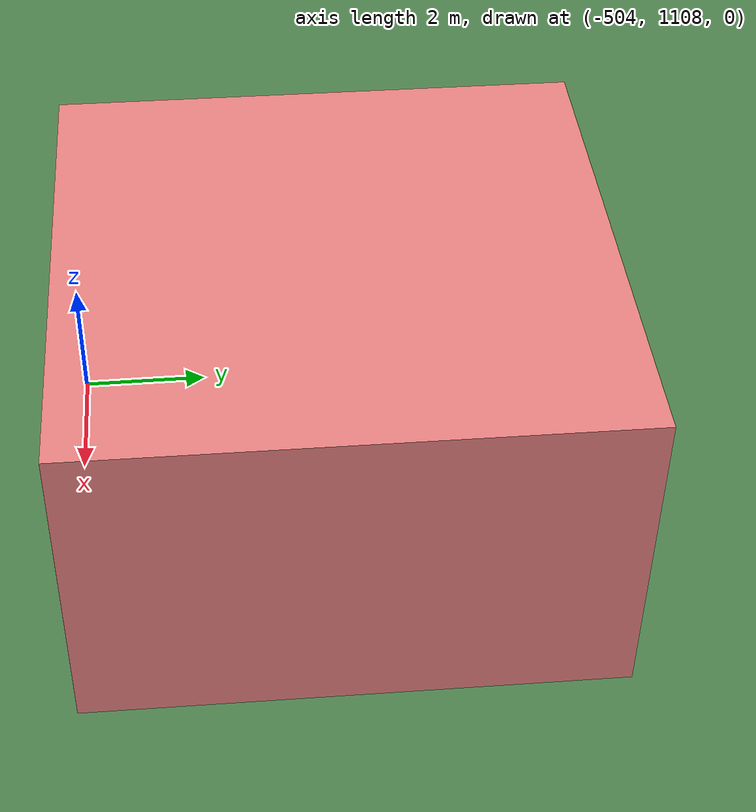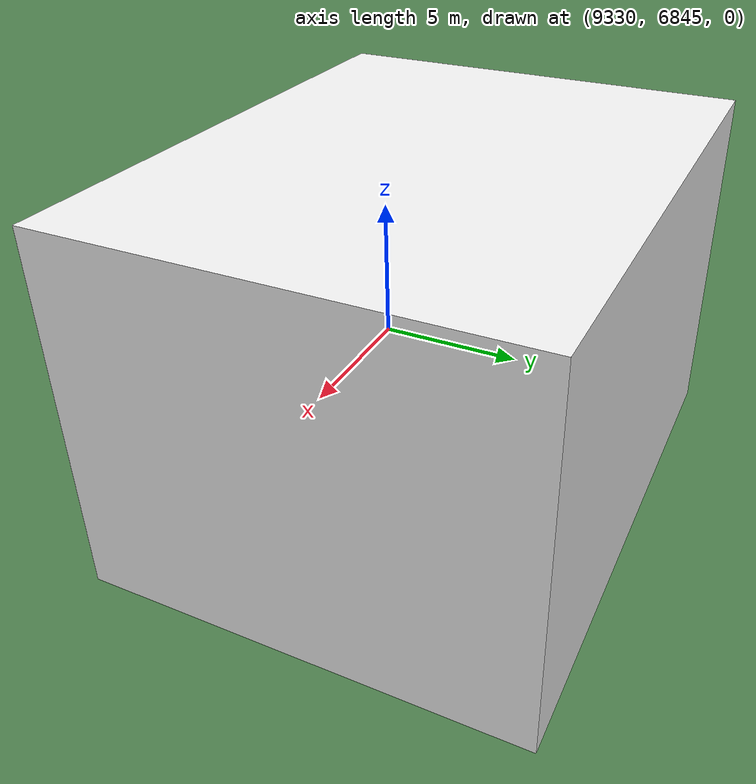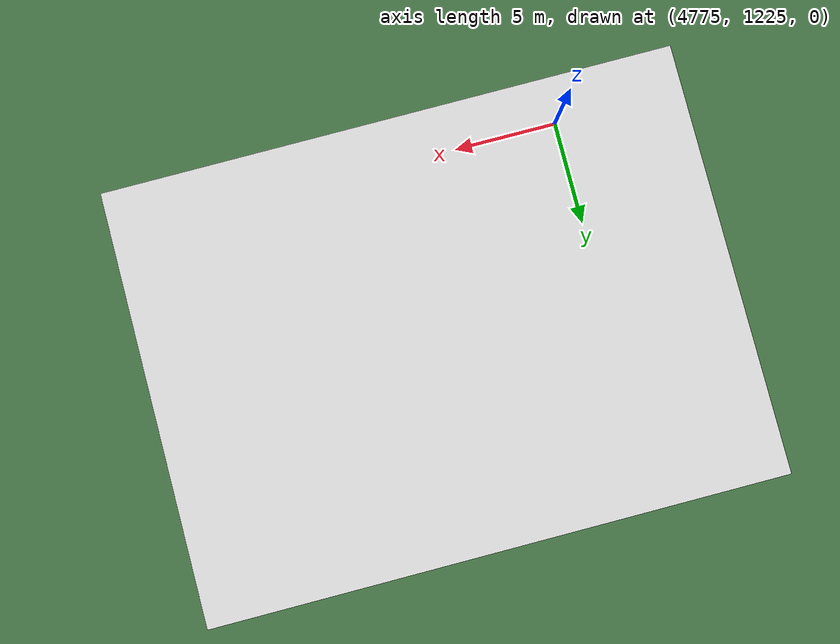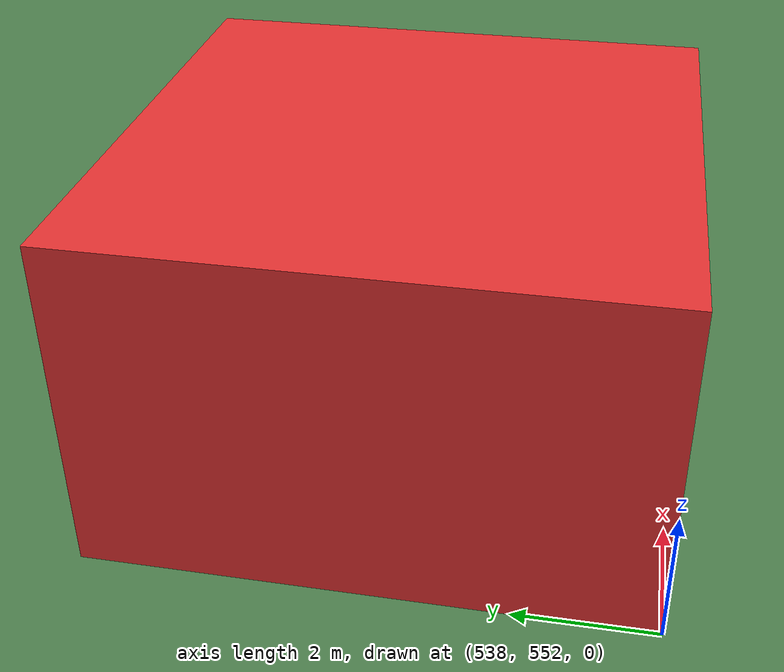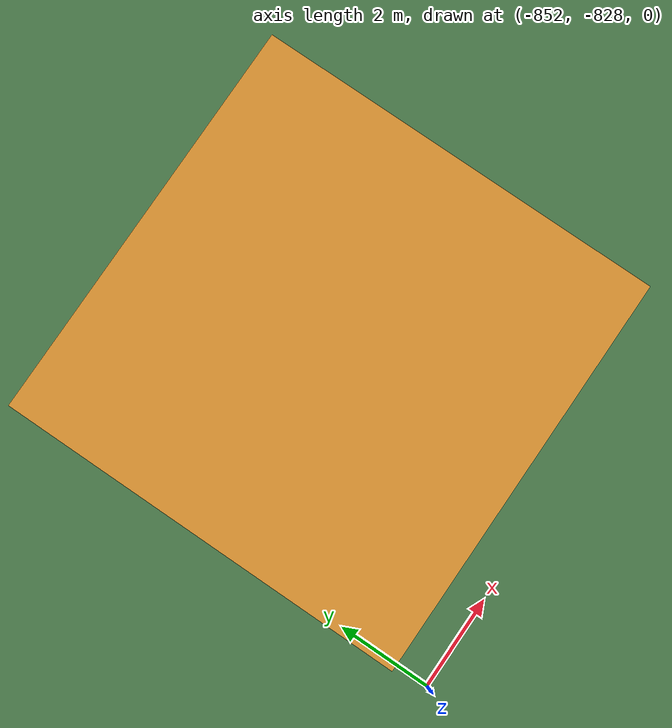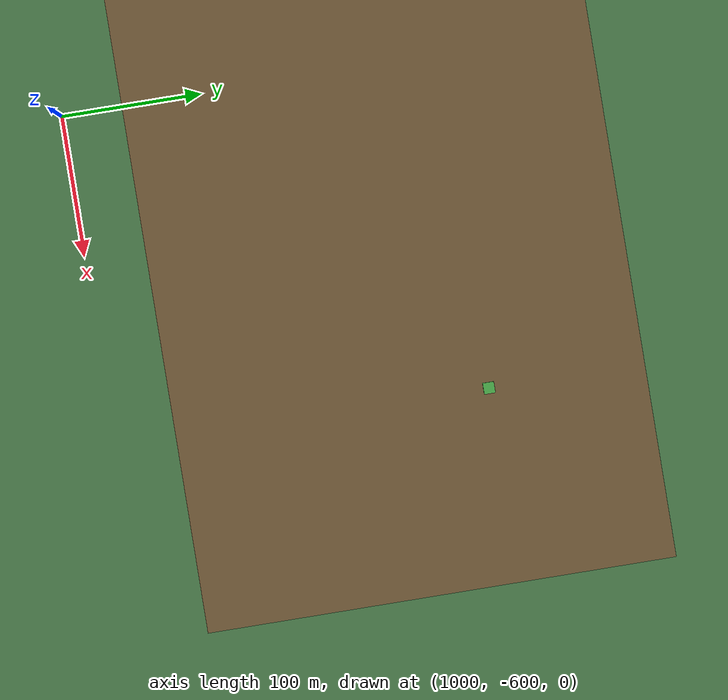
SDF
<?xml version="1.0" ?>
<sdf version="1.9">
  <world name="dronemedic">

    <!-- Spherical coordinates — aligns PX4 GPS with config.py        -->
    <spherical_coordinates>
      <surface_model>EARTH_WGS84</surface_model>
      <world_frame_orientation>ENU</world_frame_orientation>
      <latitude_deg>51.5074</latitude_deg>
      <longitude_deg>-0.1278</longitude_deg>
      <elevation>0</elevation>
      <heading_deg>0</heading_deg>
    </spherical_coordinates>

    <!-- System plugins                                                -->
    <plugin filename="gz-sim-physics-system" name="gz::sim::systems::Physics"/>
    <plugin filename="gz-sim-user-commands-system" name="gz::sim::systems::UserCommands"/>
    <plugin filename="gz-sim-scene-broadcaster-system" name="gz::sim::systems::SceneBroadcaster"/>
    <plugin filename="gz-sim-sensors-system" name="gz::sim::systems::Sensors"/>
    <plugin filename="gz-sim-imu-system" name="gz::sim::systems::Imu"/>

    <!-- Physics                                                       -->
    <physics type="ignored">
      <max_step_size>0.001</max_step_size>
      <real_time_factor>1.0</real_time_factor>
    </physics>

    <!-- Sun — directional light                                       -->
    <light type="directional" name="sun">
      <cast_shadows>true</cast_shadows>
      <direction>0.5 0.1 -0.9</direction>
      <diffuse>0.8 0.8 0.8 1</diffuse>
      <specular>0.2 0.2 0.2 1</specular>
    </light>

    <!-- Ground plane — 25 km x 15 km grass surface                    -->
    <model name="ground_plane">
      <static>true</static>
      <link name="link">
        <collision name="collision">
          <geometry>
            <plane>
              <normal>0 0 1</normal>
              <size>25000 15000</size>
            </plane>
          </geometry>
        </collision>
        <visual name="visual">
          <geometry>
            <plane>
              <normal>0 0 1</normal>
              <size>25000 15000</size>
            </plane>
          </geometry>
          <material>
            <ambient>0.3 0.5 0.3 1</ambient>
            <diffuse>0.3 0.5 0.3 1</diffuse>
          </material>
        </visual>
      </link>
    </model>

    <!-- Buildings — static box models at delivery locations            -->

    <!-- Depot (51.5074, -0.1278) — origin -->
    <model name="depot">
      <static>true</static>
      <pose>0 0 3 0 0 0</pose>
      <link name="link">
        <collision name="collision">
          <geometry>
            <box><size>10 10 6</size></box>
          </geometry>
        </collision>
        <visual name="visual">
          <geometry>
            <box><size>10 10 6</size></box>
          </geometry>
          <material>
            <ambient>0.2 0.3 0.8 1</ambient>
            <diffuse>0.2 0.3 0.8 1</diffuse>
          </material>
        </visual>
      </link>
    </model>

    <!-- Clinic A (51.5124, -0.1200) -->
    <model name="clinic_a">
      <static>true</static>
      <pose>542 556 2.5 0 0 0</pose>
      <link name="link">
        <collision name="collision">
          <geometry>
            <box><size>8 8 5</size></box>
          </geometry>
        </collision>
        <visual name="visual">
          <geometry>
            <box><size>8 8 5</size></box>
          </geometry>
          <material>
            <ambient>0.9 0.2 0.2 1</ambient>
            <diffuse>0.9 0.2 0.2 1</diffuse>
          </material>
        </visual>
      </link>
    </model>

    <!-- Clinic B (51.5174, -0.1350) -->
    <model name="clinic_b">
      <static>true</static>
      <pose>-501 1112 2.5 0 0 0</pose>
      <link name="link">
        <collision name="collision">
          <geometry>
            <box><size>8 8 5</size></box>
          </geometry>
        </collision>
        <visual name="visual">
          <geometry>
            <box><size>8 8 5</size></box>
          </geometry>
          <material>
            <ambient>0.9 0.5 0.5 1</ambient>
            <diffuse>0.9 0.5 0.5 1</diffuse>
          </material>
        </visual>
      </link>
    </model>

    <!-- Clinic C (51.5044, -0.1100) -->
    <model name="clinic_c">
      <static>true</static>
      <pose>1237 -334 2 0 0 0</pose>
      <link name="link">
        <collision name="collision">
          <geometry>
            <box><size>8 8 4</size></box>
          </geometry>
        </collision>
        <visual name="visual">
          <geometry>
            <box><size>8 8 4</size></box>
          </geometry>
          <material>
            <ambient>0.3 0.7 0.3 1</ambient>
            <diffuse>0.3 0.7 0.3 1</diffuse>
          </material>
        </visual>
      </link>
    </model>

    <!-- Clinic D (51.5000, -0.1400) -->
    <model name="clinic_d">
      <static>true</static>
      <pose>-848 -823 2 0 0 0</pose>
      <link name="link">
        <collision name="collision">
          <geometry>
            <box><size>8 8 4</size></box>
          </geometry>
        </collision>
        <visual name="visual">
          <geometry>
            <box><size>8 8 4</size></box>
          </geometry>
          <material>
            <ambient>0.9 0.6 0.2 1</ambient>
            <diffuse>0.9 0.6 0.2 1</diffuse>
          </material>
        </visual>
      </link>
    </model>

    <!-- Royal London Hospital (51.5185, -0.0590) -->
    <model name="royal_london">
      <static>true</static>
      <pose>4783 1234 6 0 0 0</pose>
      <link name="link">
        <collision name="collision">
          <geometry>
            <box><size>20 15 12</size></box>
          </geometry>
        </collision>
        <visual name="visual">
          <geometry>
            <box><size>20 15 12</size></box>
          </geometry>
          <material>
            <ambient>0.95 0.95 0.95 1</ambient>
            <diffuse>0.95 0.95 0.95 1</diffuse>
          </material>
        </visual>
      </link>
    </model>

    <!-- Homerton Hospital (51.5468, -0.0456) -->
    <model name="homerton">
      <static>true</static>
      <pose>5715 4381 5 0 0 0</pose>
      <link name="link">
        <collision name="collision">
          <geometry>
            <box><size>15 12 10</size></box>
          </geometry>
        </collision>
        <visual name="visual">
          <geometry>
            <box><size>15 12 10</size></box>
          </geometry>
          <material>
            <ambient>0.95 0.95 0.95 1</ambient>
            <diffuse>0.95 0.95 0.95 1</diffuse>
          </material>
        </visual>
      </link>
    </model>

    <!-- Newham General Hospital (51.5155, 0.0285) -->
    <model name="newham_general">
      <static>true</static>
      <pose>10860 900 5 0 0 0</pose>
      <link name="link">
        <collision name="collision">
          <geometry>
            <box><size>15 12 10</size></box>
          </geometry>
        </collision>
        <visual name="visual">
          <geometry>
            <box><size>15 12 10</size></box>
          </geometry>
          <material>
            <ambient>0.95 0.95 0.95 1</ambient>
            <diffuse>0.95 0.95 0.95 1</diffuse>
          </material>
        </visual>
      </link>
    </model>

    <!-- Whipps Cross Hospital (51.5690, 0.0066) -->
    <model name="whipps_cross">
      <static>true</static>
      <pose>9337 6850 5 0 0 0</pose>
      <link name="link">
        <collision name="collision">
          <geometry>
            <box><size>15 12 10</size></box>
          </geometry>
        </collision>
        <visual name="visual">
          <geometry>
            <box><size>15 12 10</size></box>
          </geometry>
          <material>
            <ambient>0.95 0.95 0.95 1</ambient>
            <diffuse>0.95 0.95 0.95 1</diffuse>
          </material>
        </visual>
      </link>
    </model>

    <!-- No-fly zones — semi-transparent red flat boxes at z=0.5       -->

    <!-- No-fly zone 1: Military Zone Alpha -->
    <!-- GPS corners: (51.513, -0.132) to (51.516, -0.126) -->
    <!-- ENU center: ~(-209, 500) -->
    <model name="nfz_military_zone_alpha">
      <static>true</static>
      <pose>-209 500 0.5 0 0 0</pose>
      <link name="link">
        <visual name="visual">
          <geometry>
            <box><size>417 334 1</size></box>
          </geometry>
          <material>
            <ambient>0.9 0.1 0.1 0.3</ambient>
            <diffuse>0.9 0.1 0.1 0.3</diffuse>
          </material>
        </visual>
      </link>
    </model>

    <!-- No-fly zone 2: Airport Exclusion -->
    <!-- GPS corners: (51.503, -0.115) to (51.506, -0.108) -->
    <!-- ENU center: ~(1132, -390) -->
    <model name="nfz_airport_exclusion">
      <static>true</static>
      <pose>1132 -390 0.5 0 0 0</pose>
      <link name="link">
        <visual name="visual">
          <geometry>
            <box><size>487 334 1</size></box>
          </geometry>
          <material>
            <ambient>0.9 0.1 0.1 0.3</ambient>
            <diffuse>0.9 0.1 0.1 0.3</diffuse>
          </material>
        </visual>
      </link>
    </model>

  </world>
</sdf>
